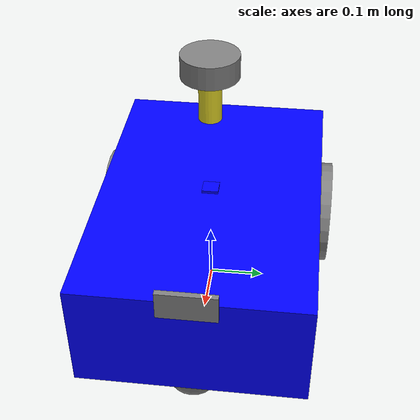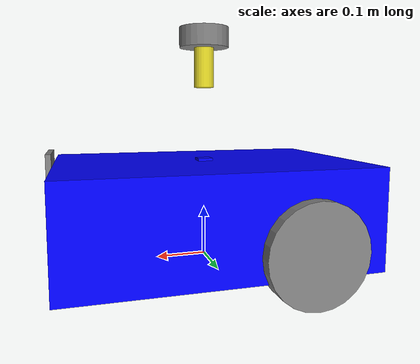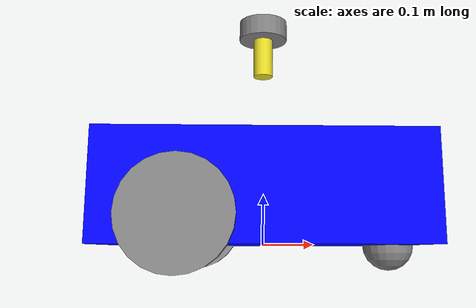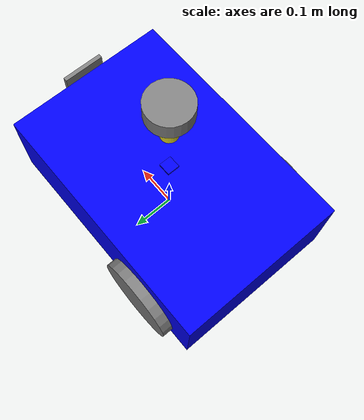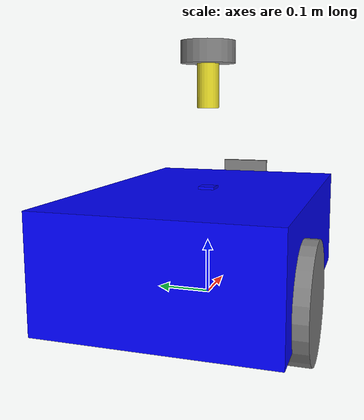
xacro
<?xml version="1.0"?>
<robot name="my_robot" xmlns:xacro="http://www.ros.org/wiki/xacro">
  <xacro:include filename="/home/fabian/ros2_ws/src/my_robot_description/urdf/lidar.urdf.xacro"/>
  <xacro:include filename="/home/fabian/ros2_ws/src/my_robot_description/urdf/imu.urdf.xacro"/>
  <xacro:include filename="/home/fabian/ros2_ws/src/my_robot_description/urdf/gps.urdf.xacro"/>

  <!-- =========================
       Properties
  ========================== -->
  <xacro:property name="base_length" value="0.6"/>
  <xacro:property name="base_width"  value="0.4"/>
  <xacro:property name="base_height" value="0.2"/>

  <xacro:property name="wheel_radius" value="0.1"/>
  <xacro:property name="wheel_width"  value="0.05"/>

  <xacro:property name="caster_radius" value="0.05"/>

  <!-- Camera props -->
  <xacro:property name="camera_length" value="0.01"/>
  <xacro:property name="camera_width"  value="0.10"/>
  <xacro:property name="camera_height" value="0.05"/>

  <!-- =========================
       Materials (RViz)
  ========================== -->
  <material name="blue"><color rgba="0 0 1 1"/></material>
  <material name="gray"><color rgba="0.5 0.5 0.5 1"/></material>

  <!-- =========================
       Macros
  ========================== -->
  <xacro:macro name="box_inertia" params="m l w h xyz:='0 0 0' rpy:='0 0 0'">
    <inertial>
      <origin xyz="${xyz}" rpy="${rpy}"/>
      <mass value="${m}"/>
      <inertia
        ixx="${(m/12.0) * (w*w + h*h)}" ixy="0.0" ixz="0.0"
        iyy="${(m/12.0) * (l*l + h*h)}" iyz="0.0"
        izz="${(m/12.0) * (l*l + w*w)}"/>
    </inertial>
  </xacro:macro>

  <xacro:macro name="wheel_link" params="prefix">
    <link name="${prefix}_wheel_link">
      <visual>
        <geometry>
          <cylinder radius="${wheel_radius}" length="${wheel_width}"/>
        </geometry>
        <origin xyz="0 0 0" rpy="${pi/2} 0 0"/>
        <material name="gray"/>
      </visual>

      <collision>
        <geometry>
          <cylinder radius="${wheel_radius}" length="${wheel_width}"/>
        </geometry>
        <origin xyz="0 0 0" rpy="${pi/2} 0 0"/>
      </collision>

      <inertial>
        <origin xyz="0 0 0" rpy="0 0 0"/>
        <mass value="0.3"/>
        <inertia ixx="0.001" ixy="0.0" ixz="0.0"
                 iyy="0.001" iyz="0.0" izz="0.001"/>
      </inertial>
    </link>
  </xacro:macro>

  <xacro:macro name="wheel_joint" params="prefix x y z">
    <joint name="base_${prefix}_wheel_joint" type="continuous">
      <parent link="base_link"/>
      <child link="${prefix}_wheel_link"/>
      <origin xyz="${x} ${y} ${z}" rpy="0 0 0"/>
      <axis xyz="0 1 0"/>
    </joint>
  </xacro:macro>

  <!-- =========================
       Base
  ========================== -->
  <link name="base_link">
    <visual>
      <geometry>
        <box size="${base_length} ${base_width} ${base_height}"/>
      </geometry>
      <origin xyz="0 0 0" rpy="0 0 0"/>
      <material name="blue"/>
    </visual>

    <collision>
      <geometry>
        <box size="${base_length} ${base_width} ${base_height}"/>
      </geometry>
      <origin xyz="0 0 0" rpy="0 0 0"/>
    </collision>

    <inertial>
      <origin xyz="0 0 0" rpy="0 0 0"/>
      <mass value="5.0"/>
      <inertia ixx="0.0833" ixy="0.0" ixz="0.0"
               iyy="0.2167" iyz="0.0" izz="0.2667"/>
    </inertial>
  </link>

  <!-- Base footprint -->
  <link name="base_footprint"/>
  <joint name="base_footprint_joint" type="fixed">
    <parent link="base_footprint"/>
    <child link="base_link"/>
    <origin xyz="0 0 ${base_height/2.0}" rpy="0 0 0"/>
  </joint>

  <!-- Wheels -->
  <xacro:wheel_link prefix="left"/>
  <xacro:wheel_link prefix="right"/>

  <!-- NOTE: z set to -0.05 as in your last version -->
  <xacro:wheel_joint prefix="left"  x="-0.15" y="0.2"  z="-0.05"/>
  <xacro:wheel_joint prefix="right" x="-0.15" y="-0.2" z="-0.05"/>

  <!-- =========================
       Caster (ball) free rotation via 2-DOF gimbal
       URDF has no true ball joint, so we approximate with 2 continuous joints.
  ========================== -->
  <link name="caster_gimbal_x_link">
    <inertial>
      <origin xyz="0 0 0" rpy="0 0 0"/>
      <mass value="0.001"/>
      <inertia ixx="1e-6" ixy="0" ixz="0" iyy="1e-6" iyz="0" izz="1e-6"/>
    </inertial>
  </link>

  <link name="caster_gimbal_y_link">
    <inertial>
      <origin xyz="0 0 0" rpy="0 0 0"/>
      <mass value="0.001"/>
      <inertia ixx="1e-6" ixy="0" ixz="0" iyy="1e-6" iyz="0" izz="1e-6"/>
    </inertial>
  </link>

  <!-- Joint 1 rotate around X at the ball center position -->
  <joint name="base_caster_gimbal_x_joint" type="continuous">
    <parent link="base_link"/>
    <child link="caster_gimbal_x_link"/>
    <!-- Ball center z = -base_height/2 + caster_radius -->
    <origin xyz="0.25 0 -0.1" rpy="0 0 0"/>
    <axis xyz="1 0 0"/>
    <dynamics damping="0.02" friction="0.0"/>
  </joint>

  <!-- Joint 2 rotate around Y -->
  <joint name="caster_gimbal_xy_joint" type="continuous">
    <parent link="caster_gimbal_x_link"/>
    <child link="caster_gimbal_y_link"/>
    <origin xyz="0 0 0" rpy="0 0 0"/>
    <axis xyz="0 1 0"/>
    <dynamics damping="0.02" friction="0.0"/>
  </joint>

  <!-- The ball itself -->
  <link name="caster_wheel_link">
    <visual>
      <geometry><sphere radius="${caster_radius}"/></geometry>
      <origin xyz="0 0 0" rpy="0 0 0"/>
      <material name="gray"/>
    </visual>
    <collision>
      <geometry><sphere radius="${caster_radius}"/></geometry>
      <origin xyz="0 0 0" rpy="0 0 0"/>
    </collision>
    <inertial>
      <origin xyz="0 0 0" rpy="0 0 0"/>
      <mass value="0.1"/>
      <inertia ixx="0.0002" ixy="0" ixz="0" iyy="0.0002" iyz="0" izz="0.0002"/>
    </inertial>
  </link>

  <!-- Mount the ball to the second gimbal link -->
  <joint name="caster_ball_mount_joint" type="fixed">
    <parent link="caster_gimbal_y_link"/>
    <child link="caster_wheel_link"/>
    <origin xyz="0 0 0" rpy="0 0 0"/>
  </joint>

  <!-- =========================
       Camera (link + optical frame)
  ========================== -->
  <link name="camera_link">
    <visual>
      <geometry>
        <box size="${camera_length} ${camera_width} ${camera_height}"/>
      </geometry>
      <origin xyz="0 0 0" rpy="0 0 0"/>
      <material name="gray"/>
    </visual>

    <collision>
      <geometry>
        <box size="${camera_length} ${camera_width} ${camera_height}"/>
      </geometry>
      <origin xyz="0 0 0" rpy="0 0 0"/>
    </collision>

    <xacro:box_inertia
      m="0.1"
      l="${camera_length}"
      w="${camera_width}"
      h="${camera_height}"/>
  </link>

  <joint name="base_camera_joint" type="fixed">
    <parent link="base_link"/>
    <child link="camera_link"/>
    <origin xyz="${(base_length + camera_length)/2.0} 0 ${base_height/2.0}" rpy="0 0 0"/>
  </joint>

  <!-- Optical frame for OpenCV convention -->
  <link name="camera_link_optical"/>
  <joint name="camera_optical_joint" type="fixed">
    <parent link="camera_link"/>
    <child link="camera_link_optical"/>
    <origin xyz="0 0 0" rpy="${-pi/2} 0 ${-pi/2}"/>
  </joint>

  <!-- =========================
       Gazebo colors + friction hints
  ========================== -->
  <gazebo reference="base_link"><material>Gazebo/Blue</material></gazebo>
  <gazebo reference="left_wheel_link"><material>Gazebo/Gray</material></gazebo>
  <gazebo reference="right_wheel_link"><material>Gazebo/Gray</material></gazebo>

  <gazebo reference="caster_wheel_link">
    <material>Gazebo/Gray</material>
    <mu1>1.0</mu1>
    <mu2>1.0</mu2>
  </gazebo>

  <gazebo reference="camera_link"><material>Gazebo/Red</material></gazebo>

  <!-- =========================
       Gazebo camera sensor + ROS2 camera plugin (Gazebo Classic)
  ========================== -->
  <gazebo reference="camera_link">
    <sensor name="camera_sensor" type="camera">
      <pose>0 0 0 0 0 0</pose>
      <visualize>true</visualize>
      <update_rate>10</update_rate>

      <camera>
        <horizontal_fov>1.047</horizontal_fov>
        <image>
          <width>640</width>
          <height>480</height>
          <format>R8G8B8</format>
        </image>
        <clip>
          <near>0.05</near>
          <far>100.0</far>
        </clip>
      </camera>

      <plugin name="camera_controller" filename="libgazebo_ros_camera.so">
        <ros>
          <namespace>/</namespace>
        </ros>
        <camera_name>camera_sensor</camera_name>
        <frame_name>camera_link_optical</frame_name>
      </plugin>
    </sensor>
  </gazebo>

  <!-- =========================
       Gazebo diff-drive plugin (Gazebo Classic)
  ========================== -->
  <gazebo>
    <plugin name="diff_drive_controller" filename="libgazebo_ros_diff_drive.so">
      <ros>
        <namespace>/</namespace>
      </ros>
      <update_rate>50</update_rate>

      <left_joint>base_left_wheel_joint</left_joint>
      <right_joint>base_right_wheel_joint</right_joint>

      <wheel_separation>0.45</wheel_separation>
      <wheel_diameter>0.2</wheel_diameter>

      <publish_odom>true</publish_odom>
      <publish_odom_tf>true</publish_odom_tf>
      <publish_wheel_tf>true</publish_wheel_tf>

      <odometry_topic>odom</odometry_topic>
      <odometry_frame>odom</odometry_frame>
      <robot_base_frame>base_footprint</robot_base_frame>

      <command_topic>cmd_vel</command_topic>
    </plugin>
  </gazebo>

</robot>

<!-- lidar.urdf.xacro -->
<robot xmlns:xacro="http://www.ros.org/wiki/xacro">

  <xacro:property name="lidar_height" value="0.35"/>

  <joint name="laser_joint" type="fixed">
    <parent link="base_link"/>
    <child link="laser_frame"/>
    <origin xyz="0 0 ${lidar_height}" rpy="0 0 0"/>
  </joint>

  <link name="laser_frame">
    <visual>
      <geometry>
        <cylinder radius="0.05" length="0.04"/>
      </geometry>
      <material name="gray"/>
    </visual>
    <collision>
      <geometry>
        <cylinder radius="0.05" length="0.04"/>
      </geometry>
    </collision>
    <inertial>
      <mass value="0.1"/>
      <origin xyz="0 0 0" rpy="0 0 0"/>
      <inertia ixx="0.001" iyy="0.001" izz="0.001" ixy="0" ixz="0" iyz="0"/>
    </inertial>
  </link>

  <gazebo reference="laser_frame">
    <sensor name="lidar_sensor" type="ray">
      <pose>0 0 0 0 0 0</pose>
      <visualize>true</visualize>
      <update_rate>10.0</update_rate>
      <ray>
        <scan>
          <horizontal>
            <samples>360</samples>
            <resolution>1</resolution>
            <min_angle>-3.14159</min_angle>
            <max_angle>3.14159</max_angle>
          </horizontal>
        </scan>
        <range>
          <min>0.1</min>
          <max>12.0</max>
          <resolution>0.01</resolution>
        </range>
      </ray>

      <plugin name="lidar_plugin" filename="libgazebo_ros_ray_sensor.so">
        <ros>
          <remapping>~/out:=scan</remapping>
        </ros>
        <output_type>sensor_msgs/LaserScan</output_type>
        <frame_name>laser_frame</frame_name>
      </plugin>
    </sensor>
  </gazebo>

</robot>

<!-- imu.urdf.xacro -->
<robot xmlns:xacro="http://www.ros.org/wiki/xacro">

  <xacro:property name="imu_offset_x" value="0.0"/>
  <xacro:property name="imu_offset_y" value="0.0"/>
  <xacro:property name="imu_offset_z" value="0.1"/>

  <joint name="imu_joint" type="fixed">
    <parent link="base_link"/>
    <child link="imu_link"/>
    <origin xyz="${imu_offset_x} ${imu_offset_y} ${imu_offset_z}" rpy="0 0 0"/>
  </joint>

  <link name="imu_link">
    <visual>
      <geometry><box size="0.03 0.03 0.01"/></geometry>
      <material name="blue"/>
    </visual>
    <collision>
      <geometry><box size="0.03 0.03 0.01"/></geometry>
    </collision>
    <inertial>
      <mass value="0.01"/>
      <origin xyz="0 0 0" rpy="0 0 0"/>
      <inertia ixx="1e-6" iyy="1e-6" izz="1e-6" ixy="0" ixz="0" iyz="0"/>
    </inertial>
  </link>

  <gazebo reference="imu_link">
    <sensor name="imu_sensor" type="imu">
      <always_on>true</always_on>
      <update_rate>50</update_rate>
      <visualize>true</visualize>
      <pose>0 0 0 0 0 0</pose>

      <plugin name="gazebo_ros_imu" filename="libgazebo_ros_imu_sensor.so">
        <ros>
          <remapping>~/out:=imu/data</remapping>
        </ros>
        <frame_name>imu_link</frame_name>
        <enable_orientation>true</enable_orientation>
        <enable_angular_velocity>true</enable_angular_velocity>
        <enable_linear_acceleration>true</enable_linear_acceleration>
      </plugin>
    </sensor>
  </gazebo>

</robot>

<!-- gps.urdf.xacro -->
<robot xmlns:xacro="http://www.ros.org/wiki/xacro">

  <xacro:property name="gps_offset_x" value="0.0"/>
  <xacro:property name="gps_offset_y" value="0.0"/>
  <xacro:property name="gps_offset_z" value="0.3"/> <!-- 30 см над базой -->

  <link name="gps_link">
    <visual>
      <geometry><cylinder radius="0.02" length="0.1"/></geometry>
      <material name="yellow"/>
    </visual>
    <collision>
      <geometry><cylinder radius="0.02" length="0.1"/></geometry>
    </collision>
    <inertial>
      <mass value="0.05"/>
      <origin xyz="0 0 0" rpy="0 0 0"/>
      <inertia ixx="1e-5" iyy="1e-5" izz="1e-5" ixy="0" ixz="0" iyz="0"/>
    </inertial>
  </link>

  <joint name="gps_joint" type="fixed">
    <parent link="base_link"/>
    <child link="gps_link"/>
    <origin xyz="${gps_offset_x} ${gps_offset_y} ${gps_offset_z}" rpy="0 0 0"/>
  </joint>

  <gazebo reference="gps_link">
    <sensor name="gps_sensor" type="gps">
      <always_on>true</always_on>
      <update_rate>1</update_rate>
      <visualize>false</visualize>
      <plugin name="gazebo_ros_gps" filename="libgazebo_ros_gps_sensor.so">
        <ros>
          <remapping>~/out:=gps/fix</remapping>
        </ros>
        <frame_name>gps_link</frame_name>
      </plugin>
    </sensor>
  </gazebo>

</robot>
